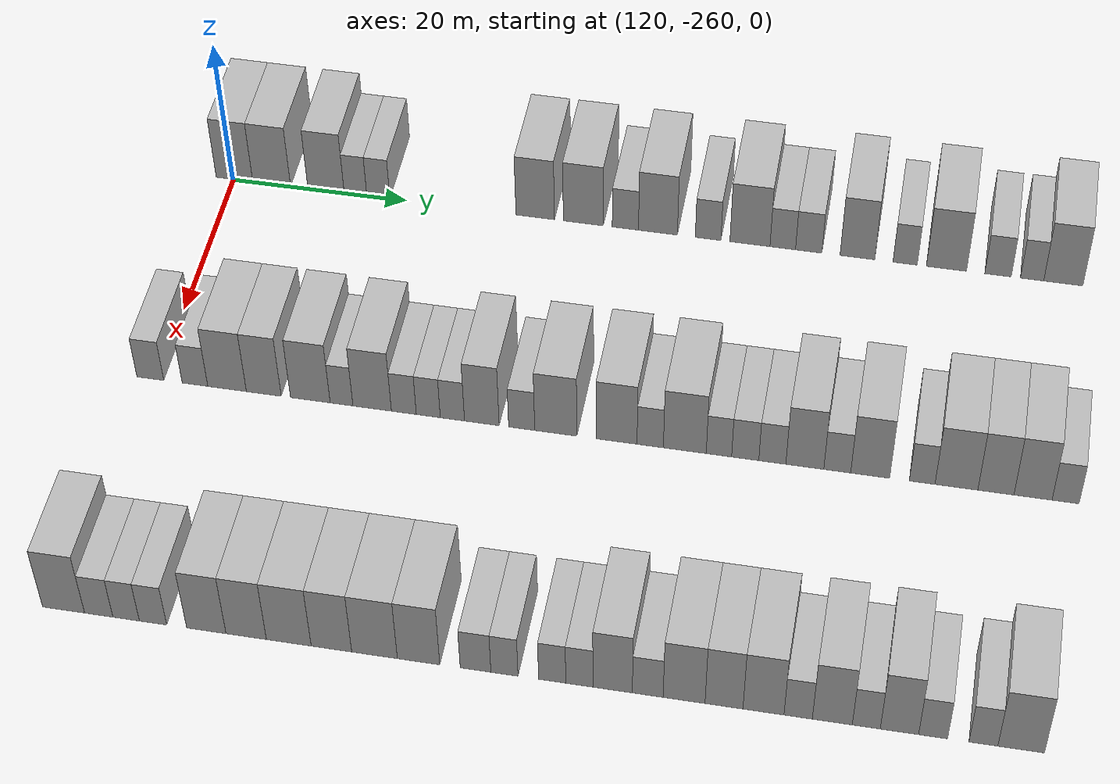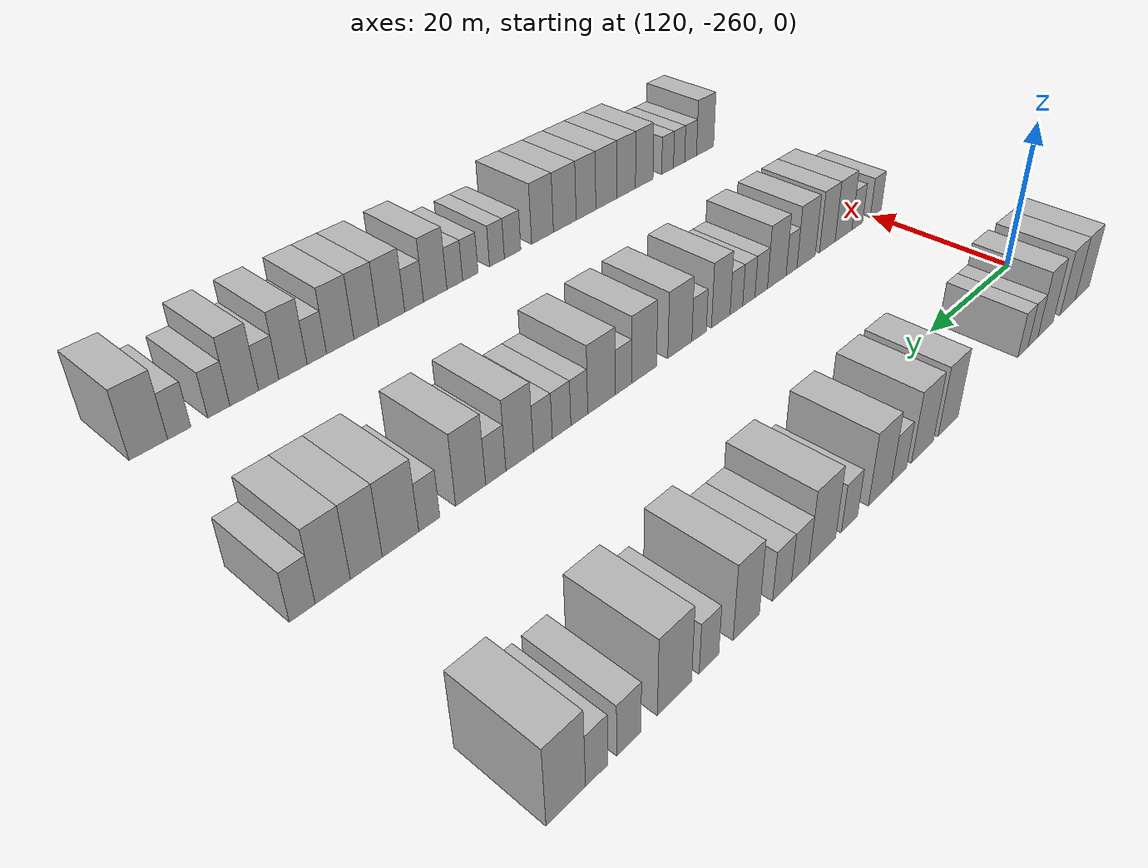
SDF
<sdf version="1.6">
 <world name="default">
  <model name="building_700">
   <static>1</static>
   <pose>115.0000 -259.8580 0 0.000000 0.000000 0.000000</pose>
   <link name="link">
    <pose>0 0 4.50 0 0 0</pose>
    <collision name="collision"><geometry><box><size>10.0000 4.2283 9.0000</size></box></geometry></collision>
    <visual name="visual">
     <cast_shadows>0</cast_shadows>
     <geometry><box><size>10.0000 4.2283 9.0000</size></box></geometry>
     <material>
      <script>
       <uri>model://HANNAS_wall/materials/scripts</uri>
       <uri>model://HANNAS_wall/materials/textures</uri>
       <name>vrc/HANNAS_wall</name>
      </script>
     </material>
    </visual>
   </link>
  </model>
  <model name="building_701">
   <static>1</static>
   <pose>115.0000 -255.5578 0 0.000000 0.000000 0.000000</pose>
   <link name="link">
    <pose>0 0 4.50 0 0 0</pose>
    <collision name="collision"><geometry><box><size>10.0000 4.3722 9.0000</size></box></geometry></collision>
    <visual name="visual">
     <cast_shadows>0</cast_shadows>
     <geometry><box><size>10.0000 4.3722 9.0000</size></box></geometry>
     <material>
      <script>
       <uri>model://HANNAS_wall/materials/scripts</uri>
       <uri>model://HANNAS_wall/materials/textures</uri>
       <name>vrc/HANNAS_wall</name>
      </script>
     </material>
    </visual>
   </link>
  </model>
  <model name="building_702">
   <static>1</static>
   <pose>115.0000 -249.2873 0 0.000000 0.000000 0.000000</pose>
   <link name="link">
    <pose>0 0 4.50 0 0 0</pose>
    <collision name="collision"><geometry><box><size>10.0000 4.1688 9.0000</size></box></geometry></collision>
    <visual name="visual">
     <cast_shadows>0</cast_shadows>
     <geometry><box><size>10.0000 4.1688 9.0000</size></box></geometry>
     <material>
      <script>
       <uri>model://HANNAS_wall/materials/scripts</uri>
       <uri>model://HANNAS_wall/materials/textures</uri>
       <name>vrc/HANNAS_wall</name>
      </script>
     </material>
    </visual>
   </link>
  </model>
  <model name="building_703">
   <static>1</static>
   <pose>115.0000 -245.9062 0 0.000000 0.000000 0.000000</pose>
   <link name="link">
    <pose>0 0 3.00 0 0 0</pose>
    <collision name="collision"><geometry><box><size>10.0000 2.5935 6.0000</size></box></geometry></collision>
    <visual name="visual">
     <cast_shadows>0</cast_shadows>
     <geometry><box><size>10.0000 2.5935 6.0000</size></box></geometry>
     <material>
      <script>
       <uri>model://HANNAS_wall/materials/scripts</uri>
       <uri>model://HANNAS_wall/materials/textures</uri>
       <name>vrc/HANNAS_wall</name>
      </script>
     </material>
    </visual>
   </link>
  </model>
  <model name="building_704">
   <static>1</static>
   <pose>115.0000 -243.2908 0 0.000000 0.000000 0.000000</pose>
   <link name="link">
    <pose>0 0 3.00 0 0 0</pose>
    <collision name="collision"><geometry><box><size>10.0000 2.6372 6.0000</size></box></geometry></collision>
    <visual name="visual">
     <cast_shadows>0</cast_shadows>
     <geometry><box><size>10.0000 2.6372 6.0000</size></box></geometry>
     <material>
      <script>
       <uri>model://HANNAS_wall/materials/scripts</uri>
       <uri>model://HANNAS_wall/materials/textures</uri>
       <name>vrc/HANNAS_wall</name>
      </script>
     </material>
    </visual>
   </link>
  </model>
  <model name="building_705">
   <static>1</static>
   <pose>115.0000 -225.4615 0 0.000000 0.000000 0.000000</pose>
   <link name="link">
    <pose>0 0 4.50 0 0 0</pose>
    <collision name="collision"><geometry><box><size>10.0000 4.3405 9.0000</size></box></geometry></collision>
    <visual name="visual">
     <cast_shadows>0</cast_shadows>
     <geometry><box><size>10.0000 4.3405 9.0000</size></box></geometry>
     <material>
      <script>
       <uri>model://HANNAS_wall/materials/scripts</uri>
       <uri>model://HANNAS_wall/materials/textures</uri>
       <name>vrc/HANNAS_wall</name>
      </script>
     </material>
    </visual>
   </link>
  </model>
  <model name="building_706">
   <static>1</static>
   <pose>115.0000 -220.0468 0 0.000000 0.000000 0.000000</pose>
   <link name="link">
    <pose>0 0 4.50 0 0 0</pose>
    <collision name="collision"><geometry><box><size>10.0000 4.4889 9.0000</size></box></geometry></collision>
    <visual name="visual">
     <cast_shadows>0</cast_shadows>
     <geometry><box><size>10.0000 4.4889 9.0000</size></box></geometry>
     <material>
      <script>
       <uri>model://HANNAS_wall/materials/scripts</uri>
       <uri>model://HANNAS_wall/materials/textures</uri>
       <name>vrc/HANNAS_wall</name>
      </script>
     </material>
    </visual>
   </link>
  </model>
  <model name="building_707">
   <static>1</static>
   <pose>115.0000 -215.3329 0 0.000000 0.000000 0.000000</pose>
   <link name="link">
    <pose>0 0 3.00 0 0 0</pose>
    <collision name="collision"><geometry><box><size>10.0000 2.9389 6.0000</size></box></geometry></collision>
    <visual name="visual">
     <cast_shadows>0</cast_shadows>
     <geometry><box><size>10.0000 2.9389 6.0000</size></box></geometry>
     <material>
      <script>
       <uri>model://HANNAS_wall/materials/scripts</uri>
       <uri>model://HANNAS_wall/materials/textures</uri>
       <name>vrc/HANNAS_wall</name>
      </script>
     </material>
    </visual>
   </link>
  </model>
  <model name="building_708">
   <static>1</static>
   <pose>115.0000 -211.6964 0 0.000000 0.000000 0.000000</pose>
   <link name="link">
    <pose>0 0 4.50 0 0 0</pose>
    <collision name="collision"><geometry><box><size>10.0000 4.3342 9.0000</size></box></geometry></collision>
    <visual name="visual">
     <cast_shadows>0</cast_shadows>
     <geometry><box><size>10.0000 4.3342 9.0000</size></box></geometry>
     <material>
      <script>
       <uri>model://HANNAS_wall/materials/scripts</uri>
       <uri>model://HANNAS_wall/materials/textures</uri>
       <name>vrc/HANNAS_wall</name>
      </script>
     </material>
    </visual>
   </link>
  </model>
  <model name="building_709">
   <static>1</static>
   <pose>115.0000 -206.1065 0 0.000000 0.000000 0.000000</pose>
   <link name="link">
    <pose>0 0 3.00 0 0 0</pose>
    <collision name="collision"><geometry><box><size>10.0000 2.8456 6.0000</size></box></geometry></collision>
    <visual name="visual">
     <cast_shadows>0</cast_shadows>
     <geometry><box><size>10.0000 2.8456 6.0000</size></box></geometry>
     <material>
      <script>
       <uri>model://HANNAS_wall/materials/scripts</uri>
       <uri>model://HANNAS_wall/materials/textures</uri>
       <name>vrc/HANNAS_wall</name>
      </script>
     </material>
    </visual>
   </link>
  </model>
  <model name="building_710">
   <static>1</static>
   <pose>115.0000 -201.4674 0 0.000000 0.000000 0.000000</pose>
   <link name="link">
    <pose>0 0 4.50 0 0 0</pose>
    <collision name="collision"><geometry><box><size>10.0000 4.4326 9.0000</size></box></geometry></collision>
    <visual name="visual">
     <cast_shadows>0</cast_shadows>
     <geometry><box><size>10.0000 4.4326 9.0000</size></box></geometry>
     <material>
      <script>
       <uri>model://HANNAS_wall/materials/scripts</uri>
       <uri>model://HANNAS_wall/materials/textures</uri>
       <name>vrc/HANNAS_wall</name>
      </script>
     </material>
    </visual>
   </link>
  </model>
  <model name="building_711">
   <static>1</static>
   <pose>115.0000 -197.8396 0 0.000000 0.000000 0.000000</pose>
   <link name="link">
    <pose>0 0 3.00 0 0 0</pose>
    <collision name="collision"><geometry><box><size>10.0000 2.8230 6.0000</size></box></geometry></collision>
    <visual name="visual">
     <cast_shadows>0</cast_shadows>
     <geometry><box><size>10.0000 2.8230 6.0000</size></box></geometry>
     <material>
      <script>
       <uri>model://HANNAS_wall/materials/scripts</uri>
       <uri>model://HANNAS_wall/materials/textures</uri>
       <name>vrc/HANNAS_wall</name>
      </script>
     </material>
    </visual>
   </link>
  </model>
  <model name="building_712">
   <static>1</static>
   <pose>115.0000 -194.9778 0 0.000000 0.000000 0.000000</pose>
   <link name="link">
    <pose>0 0 3.00 0 0 0</pose>
    <collision name="collision"><geometry><box><size>10.0000 2.9005 6.0000</size></box></geometry></collision>
    <visual name="visual">
     <cast_shadows>0</cast_shadows>
     <geometry><box><size>10.0000 2.9005 6.0000</size></box></geometry>
     <material>
      <script>
       <uri>model://HANNAS_wall/materials/scripts</uri>
       <uri>model://HANNAS_wall/materials/textures</uri>
       <name>vrc/HANNAS_wall</name>
      </script>
     </material>
    </visual>
   </link>
  </model>
  <model name="building_713">
   <static>1</static>
   <pose>115.0000 -189.6256 0 0.000000 0.000000 0.000000</pose>
   <link name="link">
    <pose>0 0 4.50 0 0 0</pose>
    <collision name="collision"><geometry><box><size>10.0000 3.8039 9.0000</size></box></geometry></collision>
    <visual name="visual">
     <cast_shadows>0</cast_shadows>
     <geometry><box><size>10.0000 3.8039 9.0000</size></box></geometry>
     <material>
      <script>
       <uri>model://HANNAS_wall/materials/scripts</uri>
       <uri>model://HANNAS_wall/materials/textures</uri>
       <name>vrc/HANNAS_wall</name>
      </script>
     </material>
    </visual>
   </link>
  </model>
  <model name="building_714">
   <static>1</static>
   <pose>115.0000 -184.4001 0 0.000000 0.000000 0.000000</pose>
   <link name="link">
    <pose>0 0 3.00 0 0 0</pose>
    <collision name="collision"><geometry><box><size>10.0000 2.6471 6.0000</size></box></geometry></collision>
    <visual name="visual">
     <cast_shadows>0</cast_shadows>
     <geometry><box><size>10.0000 2.6471 6.0000</size></box></geometry>
     <material>
      <script>
       <uri>model://HANNAS_wall/materials/scripts</uri>
       <uri>model://HANNAS_wall/materials/textures</uri>
       <name>vrc/HANNAS_wall</name>
      </script>
     </material>
    </visual>
   </link>
  </model>
  <model name="building_715">
   <static>1</static>
   <pose>115.0000 -179.8982 0 0.000000 0.000000 0.000000</pose>
   <link name="link">
    <pose>0 0 4.50 0 0 0</pose>
    <collision name="collision"><geometry><box><size>10.0000 4.3566 9.0000</size></box></geometry></collision>
    <visual name="visual">
     <cast_shadows>0</cast_shadows>
     <geometry><box><size>10.0000 4.3566 9.0000</size></box></geometry>
     <material>
      <script>
       <uri>model://HANNAS_wall/materials/scripts</uri>
       <uri>model://HANNAS_wall/materials/textures</uri>
       <name>vrc/HANNAS_wall</name>
      </script>
     </material>
    </visual>
   </link>
  </model>
  <model name="building_716">
   <static>1</static>
   <pose>115.0000 -174.2910 0 0.000000 0.000000 0.000000</pose>
   <link name="link">
    <pose>0 0 3.00 0 0 0</pose>
    <collision name="collision"><geometry><box><size>10.0000 2.8578 6.0000</size></box></geometry></collision>
    <visual name="visual">
     <cast_shadows>0</cast_shadows>
     <geometry><box><size>10.0000 2.8578 6.0000</size></box></geometry>
     <material>
      <script>
       <uri>model://HANNAS_wall/materials/scripts</uri>
       <uri>model://HANNAS_wall/materials/textures</uri>
       <name>vrc/HANNAS_wall</name>
      </script>
     </material>
    </visual>
   </link>
  </model>
  <model name="building_717">
   <static>1</static>
   <pose>115.0000 -170.6060 0 0.000000 0.000000 0.000000</pose>
   <link name="link">
    <pose>0 0 3.00 0 0 0</pose>
    <collision name="collision"><geometry><box><size>10.0000 2.5124 6.0000</size></box></geometry></collision>
    <visual name="visual">
     <cast_shadows>0</cast_shadows>
     <geometry><box><size>10.0000 2.5124 6.0000</size></box></geometry>
     <material>
      <script>
       <uri>model://HANNAS_wall/materials/scripts</uri>
       <uri>model://HANNAS_wall/materials/textures</uri>
       <name>vrc/HANNAS_wall</name>
      </script>
     </material>
    </visual>
   </link>
  </model>
  <model name="building_718">
   <static>1</static>
   <pose>115.0000 -167.2430 0 0.000000 0.000000 0.000000</pose>
   <link name="link">
    <pose>0 0 4.50 0 0 0</pose>
    <collision name="collision"><geometry><box><size>10.0000 4.2135 9.0000</size></box></geometry></collision>
    <visual name="visual">
     <cast_shadows>0</cast_shadows>
     <geometry><box><size>10.0000 4.2135 9.0000</size></box></geometry>
     <material>
      <script>
       <uri>model://HANNAS_wall/materials/scripts</uri>
       <uri>model://HANNAS_wall/materials/textures</uri>
       <name>vrc/HANNAS_wall</name>
      </script>
     </material>
    </visual>
   </link>
  </model>
  <model name="building_907">
   <static>1</static>
   <pose>145.0000 -260.8319 0 0.000000 0.000000 0.000000</pose>
   <link name="link">
    <pose>0 0 3.00 0 0 0</pose>
    <collision name="collision"><geometry><box><size>10.0000 2.9143 6.0000</size></box></geometry></collision>
    <visual name="visual">
     <cast_shadows>0</cast_shadows>
     <geometry><box><size>10.0000 2.9143 6.0000</size></box></geometry>
     <material>
      <script>
       <uri>model://HANNAS_wall/materials/scripts</uri>
       <uri>model://HANNAS_wall/materials/textures</uri>
       <name>vrc/HANNAS_wall</name>
      </script>
     </material>
    </visual>
   </link>
  </model>
  <model name="building_908">
   <static>1</static>
   <pose>145.0000 -255.9924 0 0.000000 0.000000 0.000000</pose>
   <link name="link">
    <pose>0 0 3.00 0 0 0</pose>
    <collision name="collision"><geometry><box><size>10.0000 2.7648 6.0000</size></box></geometry></collision>
    <visual name="visual">
     <cast_shadows>0</cast_shadows>
     <geometry><box><size>10.0000 2.7648 6.0000</size></box></geometry>
     <material>
      <script>
       <uri>model://HANNAS_wall/materials/scripts</uri>
       <uri>model://HANNAS_wall/materials/textures</uri>
       <name>vrc/HANNAS_wall</name>
      </script>
     </material>
    </visual>
   </link>
  </model>
  <model name="building_909">
   <static>1</static>
   <pose>145.0000 -252.5292 0 0.000000 0.000000 0.000000</pose>
   <link name="link">
    <pose>0 0 4.50 0 0 0</pose>
    <collision name="collision"><geometry><box><size>10.0000 4.1617 9.0000</size></box></geometry></collision>
    <visual name="visual">
     <cast_shadows>0</cast_shadows>
     <geometry><box><size>10.0000 4.1617 9.0000</size></box></geometry>
     <material>
      <script>
       <uri>model://HANNAS_wall/materials/scripts</uri>
       <uri>model://HANNAS_wall/materials/textures</uri>
       <name>vrc/HANNAS_wall</name>
      </script>
     </material>
    </visual>
   </link>
  </model>
  <model name="building_910">
   <static>1</static>
   <pose>145.0000 -248.5747 0 0.000000 0.000000 0.000000</pose>
   <link name="link">
    <pose>0 0 4.50 0 0 0</pose>
    <collision name="collision"><geometry><box><size>10.0000 3.7472 9.0000</size></box></geometry></collision>
    <visual name="visual">
     <cast_shadows>0</cast_shadows>
     <geometry><box><size>10.0000 3.7472 9.0000</size></box></geometry>
     <material>
      <script>
       <uri>model://HANNAS_wall/materials/scripts</uri>
       <uri>model://HANNAS_wall/materials/textures</uri>
       <name>vrc/HANNAS_wall</name>
      </script>
     </material>
    </visual>
   </link>
  </model>
  <model name="building_911">
   <static>1</static>
   <pose>145.0000 -243.5836 0 0.000000 0.000000 0.000000</pose>
   <link name="link">
    <pose>0 0 4.50 0 0 0</pose>
    <collision name="collision"><geometry><box><size>10.0000 4.2349 9.0000</size></box></geometry></collision>
    <visual name="visual">
     <cast_shadows>0</cast_shadows>
     <geometry><box><size>10.0000 4.2349 9.0000</size></box></geometry>
     <material>
      <script>
       <uri>model://HANNAS_wall/materials/scripts</uri>
       <uri>model://HANNAS_wall/materials/textures</uri>
       <name>vrc/HANNAS_wall</name>
      </script>
     </material>
    </visual>
   </link>
  </model>
  <model name="building_912">
   <static>1</static>
   <pose>145.0000 -240.2496 0 0.000000 0.000000 0.000000</pose>
   <link name="link">
    <pose>0 0 3.00 0 0 0</pose>
    <collision name="collision"><geometry><box><size>10.0000 2.4333 6.0000</size></box></geometry></collision>
    <visual name="visual">
     <cast_shadows>0</cast_shadows>
     <geometry><box><size>10.0000 2.4333 6.0000</size></box></geometry>
     <material>
      <script>
       <uri>model://HANNAS_wall/materials/scripts</uri>
       <uri>model://HANNAS_wall/materials/textures</uri>
       <name>vrc/HANNAS_wall</name>
      </script>
     </material>
    </visual>
   </link>
  </model>
  <model name="building_913">
   <static>1</static>
   <pose>145.0000 -236.9877 0 0.000000 0.000000 0.000000</pose>
   <link name="link">
    <pose>0 0 4.50 0 0 0</pose>
    <collision name="collision"><geometry><box><size>10.0000 4.0904 9.0000</size></box></geometry></collision>
    <visual name="visual">
     <cast_shadows>0</cast_shadows>
     <geometry><box><size>10.0000 4.0904 9.0000</size></box></geometry>
     <material>
      <script>
       <uri>model://HANNAS_wall/materials/scripts</uri>
       <uri>model://HANNAS_wall/materials/textures</uri>
       <name>vrc/HANNAS_wall</name>
      </script>
     </material>
    </visual>
   </link>
  </model>
  <model name="building_914">
   <static>1</static>
   <pose>145.0000 -233.6205 0 0.000000 0.000000 0.000000</pose>
   <link name="link">
    <pose>0 0 3.00 0 0 0</pose>
    <collision name="collision"><geometry><box><size>10.0000 2.6441 6.0000</size></box></geometry></collision>
    <visual name="visual">
     <cast_shadows>0</cast_shadows>
     <geometry><box><size>10.0000 2.6441 6.0000</size></box></geometry>
     <material>
      <script>
       <uri>model://HANNAS_wall/materials/scripts</uri>
       <uri>model://HANNAS_wall/materials/textures</uri>
       <name>vrc/HANNAS_wall</name>
      </script>
     </material>
    </visual>
   </link>
  </model>
  <model name="building_915">
   <static>1</static>
   <pose>145.0000 -231.0294 0 0.000000 0.000000 0.000000</pose>
   <link name="link">
    <pose>0 0 3.00 0 0 0</pose>
    <collision name="collision"><geometry><box><size>10.0000 2.5381 6.0000</size></box></geometry></collision>
    <visual name="visual">
     <cast_shadows>0</cast_shadows>
     <geometry><box><size>10.0000 2.5381 6.0000</size></box></geometry>
     <material>
      <script>
       <uri>model://HANNAS_wall/materials/scripts</uri>
       <uri>model://HANNAS_wall/materials/textures</uri>
       <name>vrc/HANNAS_wall</name>
      </script>
     </material>
    </visual>
   </link>
  </model>
  <model name="building_916">
   <static>1</static>
   <pose>145.0000 -228.4804 0 0.000000 0.000000 0.000000</pose>
   <link name="link">
    <pose>0 0 3.00 0 0 0</pose>
    <collision name="collision"><geometry><box><size>10.0000 2.5599 6.0000</size></box></geometry></collision>
    <visual name="visual">
     <cast_shadows>0</cast_shadows>
     <geometry><box><size>10.0000 2.5599 6.0000</size></box></geometry>
     <material>
      <script>
       <uri>model://HANNAS_wall/materials/scripts</uri>
       <uri>model://HANNAS_wall/materials/textures</uri>
       <name>vrc/HANNAS_wall</name>
      </script>
     </material>
    </visual>
   </link>
  </model>
  <model name="building_917">
   <static>1</static>
   <pose>145.0000 -225.3723 0 0.000000 0.000000 0.000000</pose>
   <link name="link">
    <pose>0 0 4.50 0 0 0</pose>
    <collision name="collision"><geometry><box><size>10.0000 3.6562 9.0000</size></box></geometry></collision>
    <visual name="visual">
     <cast_shadows>0</cast_shadows>
     <geometry><box><size>10.0000 3.6562 9.0000</size></box></geometry>
     <material>
      <script>
       <uri>model://HANNAS_wall/materials/scripts</uri>
       <uri>model://HANNAS_wall/materials/textures</uri>
       <name>vrc/HANNAS_wall</name>
      </script>
     </material>
    </visual>
   </link>
  </model>
  <model name="building_918">
   <static>1</static>
   <pose>145.0000 -221.1748 0 0.000000 0.000000 0.000000</pose>
   <link name="link">
    <pose>0 0 3.00 0 0 0</pose>
    <collision name="collision"><geometry><box><size>10.0000 2.7387 6.0000</size></box></geometry></collision>
    <visual name="visual">
     <cast_shadows>0</cast_shadows>
     <geometry><box><size>10.0000 2.7387 6.0000</size></box></geometry>
     <material>
      <script>
       <uri>model://HANNAS_wall/materials/scripts</uri>
       <uri>model://HANNAS_wall/materials/textures</uri>
       <name>vrc/HANNAS_wall</name>
      </script>
     </material>
    </visual>
   </link>
  </model>
  <model name="building_919">
   <static>1</static>
   <pose>145.0000 -217.6016 0 0.000000 0.000000 0.000000</pose>
   <link name="link">
    <pose>0 0 4.50 0 0 0</pose>
    <collision name="collision"><geometry><box><size>10.0000 4.4077 9.0000</size></box></geometry></collision>
    <visual name="visual">
     <cast_shadows>0</cast_shadows>
     <geometry><box><size>10.0000 4.4077 9.0000</size></box></geometry>
     <material>
      <script>
       <uri>model://HANNAS_wall/materials/scripts</uri>
       <uri>model://HANNAS_wall/materials/textures</uri>
       <name>vrc/HANNAS_wall</name>
      </script>
     </material>
    </visual>
   </link>
  </model>
  <model name="building_920">
   <static>1</static>
   <pose>145.0000 -211.2645 0 0.000000 0.000000 0.000000</pose>
   <link name="link">
    <pose>0 0 4.50 0 0 0</pose>
    <collision name="collision"><geometry><box><size>10.0000 4.2665 9.0000</size></box></geometry></collision>
    <visual name="visual">
     <cast_shadows>0</cast_shadows>
     <geometry><box><size>10.0000 4.2665 9.0000</size></box></geometry>
     <material>
      <script>
       <uri>model://HANNAS_wall/materials/scripts</uri>
       <uri>model://HANNAS_wall/materials/textures</uri>
       <name>vrc/HANNAS_wall</name>
      </script>
     </material>
    </visual>
   </link>
  </model>
  <model name="building_921">
   <static>1</static>
   <pose>145.0000 -207.7626 0 0.000000 0.000000 0.000000</pose>
   <link name="link">
    <pose>0 0 3.00 0 0 0</pose>
    <collision name="collision"><geometry><box><size>10.0000 2.7373 6.0000</size></box></geometry></collision>
    <visual name="visual">
     <cast_shadows>0</cast_shadows>
     <geometry><box><size>10.0000 2.7373 6.0000</size></box></geometry>
     <material>
      <script>
       <uri>model://HANNAS_wall/materials/scripts</uri>
       <uri>model://HANNAS_wall/materials/textures</uri>
       <name>vrc/HANNAS_wall</name>
      </script>
     </material>
    </visual>
   </link>
  </model>
  <model name="building_922">
   <static>1</static>
   <pose>145.0000 -204.1756 0 0.000000 0.000000 0.000000</pose>
   <link name="link">
    <pose>0 0 4.50 0 0 0</pose>
    <collision name="collision"><geometry><box><size>10.0000 4.4366 9.0000</size></box></geometry></collision>
    <visual name="visual">
     <cast_shadows>0</cast_shadows>
     <geometry><box><size>10.0000 4.4366 9.0000</size></box></geometry>
     <material>
      <script>
       <uri>model://HANNAS_wall/materials/scripts</uri>
       <uri>model://HANNAS_wall/materials/textures</uri>
       <name>vrc/HANNAS_wall</name>
      </script>
     </material>
    </visual>
   </link>
  </model>
  <model name="building_923">
   <static>1</static>
   <pose>145.0000 -200.6479 0 0.000000 0.000000 0.000000</pose>
   <link name="link">
    <pose>0 0 3.00 0 0 0</pose>
    <collision name="collision"><geometry><box><size>10.0000 2.6190 6.0000</size></box></geometry></collision>
    <visual name="visual">
     <cast_shadows>0</cast_shadows>
     <geometry><box><size>10.0000 2.6190 6.0000</size></box></geometry>
     <material>
      <script>
       <uri>model://HANNAS_wall/materials/scripts</uri>
       <uri>model://HANNAS_wall/materials/textures</uri>
       <name>vrc/HANNAS_wall</name>
      </script>
     </material>
    </visual>
   </link>
  </model>
  <model name="building_924">
   <static>1</static>
   <pose>145.0000 -197.9389 0 0.000000 0.000000 0.000000</pose>
   <link name="link">
    <pose>0 0 3.00 0 0 0</pose>
    <collision name="collision"><geometry><box><size>10.0000 2.7990 6.0000</size></box></geometry></collision>
    <visual name="visual">
     <cast_shadows>0</cast_shadows>
     <geometry><box><size>10.0000 2.7990 6.0000</size></box></geometry>
     <material>
      <script>
       <uri>model://HANNAS_wall/materials/scripts</uri>
       <uri>model://HANNAS_wall/materials/textures</uri>
       <name>vrc/HANNAS_wall</name>
      </script>
     </material>
    </visual>
   </link>
  </model>
  <model name="building_925">
   <static>1</static>
   <pose>145.0000 -195.1503 0 0.000000 0.000000 0.000000</pose>
   <link name="link">
    <pose>0 0 3.00 0 0 0</pose>
    <collision name="collision"><geometry><box><size>10.0000 2.7781 6.0000</size></box></geometry></collision>
    <visual name="visual">
     <cast_shadows>0</cast_shadows>
     <geometry><box><size>10.0000 2.7781 6.0000</size></box></geometry>
     <material>
      <script>
       <uri>model://HANNAS_wall/materials/scripts</uri>
       <uri>model://HANNAS_wall/materials/textures</uri>
       <name>vrc/HANNAS_wall</name>
      </script>
     </material>
    </visual>
   </link>
  </model>
  <model name="building_926">
   <static>1</static>
   <pose>145.0000 -191.8174 0 0.000000 0.000000 0.000000</pose>
   <link name="link">
    <pose>0 0 4.50 0 0 0</pose>
    <collision name="collision"><geometry><box><size>10.0000 3.8878 9.0000</size></box></geometry></collision>
    <visual name="visual">
     <cast_shadows>0</cast_shadows>
     <geometry><box><size>10.0000 3.8878 9.0000</size></box></geometry>
     <material>
      <script>
       <uri>model://HANNAS_wall/materials/scripts</uri>
       <uri>model://HANNAS_wall/materials/textures</uri>
       <name>vrc/HANNAS_wall</name>
      </script>
     </material>
    </visual>
   </link>
  </model>
  <model name="building_927">
   <static>1</static>
   <pose>145.0000 -188.4990 0 0.000000 0.000000 0.000000</pose>
   <link name="link">
    <pose>0 0 3.00 0 0 0</pose>
    <collision name="collision"><geometry><box><size>10.0000 2.7491 6.0000</size></box></geometry></collision>
    <visual name="visual">
     <cast_shadows>0</cast_shadows>
     <geometry><box><size>10.0000 2.7491 6.0000</size></box></geometry>
     <material>
      <script>
       <uri>model://HANNAS_wall/materials/scripts</uri>
       <uri>model://HANNAS_wall/materials/textures</uri>
       <name>vrc/HANNAS_wall</name>
      </script>
     </material>
    </visual>
   </link>
  </model>
  <model name="building_928">
   <static>1</static>
   <pose>145.0000 -185.1419 0 0.000000 0.000000 0.000000</pose>
   <link name="link">
    <pose>0 0 4.50 0 0 0</pose>
    <collision name="collision"><geometry><box><size>10.0000 3.9650 9.0000</size></box></geometry></collision>
    <visual name="visual">
     <cast_shadows>0</cast_shadows>
     <geometry><box><size>10.0000 3.9650 9.0000</size></box></geometry>
     <material>
      <script>
       <uri>model://HANNAS_wall/materials/scripts</uri>
       <uri>model://HANNAS_wall/materials/textures</uri>
       <name>vrc/HANNAS_wall</name>
      </script>
     </material>
    </visual>
   </link>
  </model>
  <model name="building_929">
   <static>1</static>
   <pose>145.0000 -179.8589 0 0.000000 0.000000 0.000000</pose>
   <link name="link">
    <pose>0 0 3.00 0 0 0</pose>
    <collision name="collision"><geometry><box><size>10.0000 2.6010 6.0000</size></box></geometry></collision>
    <visual name="visual">
     <cast_shadows>0</cast_shadows>
     <geometry><box><size>10.0000 2.6010 6.0000</size></box></geometry>
     <material>
      <script>
       <uri>model://HANNAS_wall/materials/scripts</uri>
       <uri>model://HANNAS_wall/materials/textures</uri>
       <name>vrc/HANNAS_wall</name>
      </script>
     </material>
    </visual>
   </link>
  </model>
  <model name="building_930">
   <static>1</static>
   <pose>145.0000 -176.3910 0 0.000000 0.000000 0.000000</pose>
   <link name="link">
    <pose>0 0 4.50 0 0 0</pose>
    <collision name="collision"><geometry><box><size>10.0000 4.3349 9.0000</size></box></geometry></collision>
    <visual name="visual">
     <cast_shadows>0</cast_shadows>
     <geometry><box><size>10.0000 4.3349 9.0000</size></box></geometry>
     <material>
      <script>
       <uri>model://HANNAS_wall/materials/scripts</uri>
       <uri>model://HANNAS_wall/materials/textures</uri>
       <name>vrc/HANNAS_wall</name>
      </script>
     </material>
    </visual>
   </link>
  </model>
  <model name="building_931">
   <static>1</static>
   <pose>145.0000 -172.4065 0 0.000000 0.000000 0.000000</pose>
   <link name="link">
    <pose>0 0 4.50 0 0 0</pose>
    <collision name="collision"><geometry><box><size>10.0000 3.6339 9.0000</size></box></geometry></collision>
    <visual name="visual">
     <cast_shadows>0</cast_shadows>
     <geometry><box><size>10.0000 3.6339 9.0000</size></box></geometry>
     <material>
      <script>
       <uri>model://HANNAS_wall/materials/scripts</uri>
       <uri>model://HANNAS_wall/materials/textures</uri>
       <name>vrc/HANNAS_wall</name>
      </script>
     </material>
    </visual>
   </link>
  </model>
  <model name="building_932">
   <static>1</static>
   <pose>145.0000 -168.6775 0 0.000000 0.000000 0.000000</pose>
   <link name="link">
    <pose>0 0 4.50 0 0 0</pose>
    <collision name="collision"><geometry><box><size>10.0000 3.8241 9.0000</size></box></geometry></collision>
    <visual name="visual">
     <cast_shadows>0</cast_shadows>
     <geometry><box><size>10.0000 3.8241 9.0000</size></box></geometry>
     <material>
      <script>
       <uri>model://HANNAS_wall/materials/scripts</uri>
       <uri>model://HANNAS_wall/materials/textures</uri>
       <name>vrc/HANNAS_wall</name>
      </script>
     </material>
    </visual>
   </link>
  </model>
  <model name="building_933">
   <static>1</static>
   <pose>145.0000 -165.4105 0 0.000000 0.000000 0.000000</pose>
   <link name="link">
    <pose>0 0 3.00 0 0 0</pose>
    <collision name="collision"><geometry><box><size>10.0000 2.7101 6.0000</size></box></geometry></collision>
    <visual name="visual">
     <cast_shadows>0</cast_shadows>
     <geometry><box><size>10.0000 2.7101 6.0000</size></box></geometry>
     <material>
      <script>
       <uri>model://HANNAS_wall/materials/scripts</uri>
       <uri>model://HANNAS_wall/materials/textures</uri>
       <name>vrc/HANNAS_wall</name>
      </script>
     </material>
    </visual>
   </link>
  </model>
  <model name="building_1130">
   <static>1</static>
   <pose>175.0000 -260.7508 0 0.000000 0.000000 0.000000</pose>
   <link name="link">
    <pose>0 0 4.50 0 0 0</pose>
    <collision name="collision"><geometry><box><size>10.0000 4.2377 9.0000</size></box></geometry></collision>
    <visual name="visual">
     <cast_shadows>0</cast_shadows>
     <geometry><box><size>10.0000 4.2377 9.0000</size></box></geometry>
     <material>
      <script>
       <uri>model://HANNAS_wall/materials/scripts</uri>
       <uri>model://HANNAS_wall/materials/textures</uri>
       <name>vrc/HANNAS_wall</name>
      </script>
     </material>
    </visual>
   </link>
  </model>
  <model name="building_1131">
   <static>1</static>
   <pose>175.0000 -257.1983 0 0.000000 0.000000 0.000000</pose>
   <link name="link">
    <pose>0 0 3.00 0 0 0</pose>
    <collision name="collision"><geometry><box><size>10.0000 2.8672 6.0000</size></box></geometry></collision>
    <visual name="visual">
     <cast_shadows>0</cast_shadows>
     <geometry><box><size>10.0000 2.8672 6.0000</size></box></geometry>
     <material>
      <script>
       <uri>model://HANNAS_wall/materials/scripts</uri>
       <uri>model://HANNAS_wall/materials/textures</uri>
       <name>vrc/HANNAS_wall</name>
      </script>
     </material>
    </visual>
   </link>
  </model>
  <model name="building_1132">
   <static>1</static>
   <pose>175.0000 -254.4382 0 0.000000 0.000000 0.000000</pose>
   <link name="link">
    <pose>0 0 3.00 0 0 0</pose>
    <collision name="collision"><geometry><box><size>10.0000 2.6530 6.0000</size></box></geometry></collision>
    <visual name="visual">
     <cast_shadows>0</cast_shadows>
     <geometry><box><size>10.0000 2.6530 6.0000</size></box></geometry>
     <material>
      <script>
       <uri>model://HANNAS_wall/materials/scripts</uri>
       <uri>model://HANNAS_wall/materials/textures</uri>
       <name>vrc/HANNAS_wall</name>
      </script>
     </material>
    </visual>
   </link>
  </model>
  <model name="building_1133">
   <static>1</static>
   <pose>175.0000 -251.7413 0 0.000000 0.000000 0.000000</pose>
   <link name="link">
    <pose>0 0 3.00 0 0 0</pose>
    <collision name="collision"><geometry><box><size>10.0000 2.7407 6.0000</size></box></geometry></collision>
    <visual name="visual">
     <cast_shadows>0</cast_shadows>
     <geometry><box><size>10.0000 2.7407 6.0000</size></box></geometry>
     <material>
      <script>
       <uri>model://HANNAS_wall/materials/scripts</uri>
       <uri>model://HANNAS_wall/materials/textures</uri>
       <name>vrc/HANNAS_wall</name>
      </script>
     </material>
    </visual>
   </link>
  </model>
  <model name="building_1134">
   <static>1</static>
   <pose>175.0000 -246.4078 0 0.000000 0.000000 0.000000</pose>
   <link name="link">
    <pose>0 0 4.50 0 0 0</pose>
    <collision name="collision"><geometry><box><size>10.0000 3.9263 9.0000</size></box></geometry></collision>
    <visual name="visual">
     <cast_shadows>0</cast_shadows>
     <geometry><box><size>10.0000 3.9263 9.0000</size></box></geometry>
     <material>
      <script>
       <uri>model://HANNAS_wall/materials/scripts</uri>
       <uri>model://HANNAS_wall/materials/textures</uri>
       <name>vrc/HANNAS_wall</name>
      </script>
     </material>
    </visual>
   </link>
  </model>
  <model name="building_1135">
   <static>1</static>
   <pose>175.0000 -242.4346 0 0.000000 0.000000 0.000000</pose>
   <link name="link">
    <pose>0 0 4.50 0 0 0</pose>
    <collision name="collision"><geometry><box><size>10.0000 4.0201 9.0000</size></box></geometry></collision>
    <visual name="visual">
     <cast_shadows>0</cast_shadows>
     <geometry><box><size>10.0000 4.0201 9.0000</size></box></geometry>
     <material>
      <script>
       <uri>model://HANNAS_wall/materials/scripts</uri>
       <uri>model://HANNAS_wall/materials/textures</uri>
       <name>vrc/HANNAS_wall</name>
      </script>
     </material>
    </visual>
   </link>
  </model>
  <model name="building_1136">
   <static>1</static>
   <pose>175.0000 -238.2065 0 0.000000 0.000000 0.000000</pose>
   <link name="link">
    <pose>0 0 4.50 0 0 0</pose>
    <collision name="collision"><geometry><box><size>10.0000 4.4360 9.0000</size></box></geometry></collision>
    <visual name="visual">
     <cast_shadows>0</cast_shadows>
     <geometry><box><size>10.0000 4.4360 9.0000</size></box></geometry>
     <material>
      <script>
       <uri>model://HANNAS_wall/materials/scripts</uri>
       <uri>model://HANNAS_wall/materials/textures</uri>
       <name>vrc/HANNAS_wall</name>
      </script>
     </material>
    </visual>
   </link>
  </model>
  <model name="building_1137">
   <static>1</static>
   <pose>175.0000 -233.9881 0 0.000000 0.000000 0.000000</pose>
   <link name="link">
    <pose>0 0 4.50 0 0 0</pose>
    <collision name="collision"><geometry><box><size>10.0000 4.0008 9.0000</size></box></geometry></collision>
    <visual name="visual">
     <cast_shadows>0</cast_shadows>
     <geometry><box><size>10.0000 4.0008 9.0000</size></box></geometry>
     <material>
      <script>
       <uri>model://HANNAS_wall/materials/scripts</uri>
       <uri>model://HANNAS_wall/materials/textures</uri>
       <name>vrc/HANNAS_wall</name>
      </script>
     </material>
    </visual>
   </link>
  </model>
  <model name="building_1138">
   <static>1</static>
   <pose>175.0000 -229.7412 0 0.000000 0.000000 0.000000</pose>
   <link name="link">
    <pose>0 0 4.50 0 0 0</pose>
    <collision name="collision"><geometry><box><size>10.0000 4.4930 9.0000</size></box></geometry></collision>
    <visual name="visual">
     <cast_shadows>0</cast_shadows>
     <geometry><box><size>10.0000 4.4930 9.0000</size></box></geometry>
     <material>
      <script>
       <uri>model://HANNAS_wall/materials/scripts</uri>
       <uri>model://HANNAS_wall/materials/textures</uri>
       <name>vrc/HANNAS_wall</name>
      </script>
     </material>
    </visual>
   </link>
  </model>
  <model name="building_1139">
   <static>1</static>
   <pose>175.0000 -225.4194 0 0.000000 0.000000 0.000000</pose>
   <link name="link">
    <pose>0 0 4.50 0 0 0</pose>
    <collision name="collision"><geometry><box><size>10.0000 4.1505 9.0000</size></box></geometry></collision>
    <visual name="visual">
     <cast_shadows>0</cast_shadows>
     <geometry><box><size>10.0000 4.1505 9.0000</size></box></geometry>
     <material>
      <script>
       <uri>model://HANNAS_wall/materials/scripts</uri>
       <uri>model://HANNAS_wall/materials/textures</uri>
       <name>vrc/HANNAS_wall</name>
      </script>
     </material>
    </visual>
   </link>
  </model>
  <model name="building_1140">
   <static>1</static>
   <pose>175.0000 -219.8501 0 0.000000 0.000000 0.000000</pose>
   <link name="link">
    <pose>0 0 3.00 0 0 0</pose>
    <collision name="collision"><geometry><box><size>10.0000 2.9881 6.0000</size></box></geometry></collision>
    <visual name="visual">
     <cast_shadows>0</cast_shadows>
     <geometry><box><size>10.0000 2.9881 6.0000</size></box></geometry>
     <material>
      <script>
       <uri>model://HANNAS_wall/materials/scripts</uri>
       <uri>model://HANNAS_wall/materials/textures</uri>
       <name>vrc/HANNAS_wall</name>
      </script>
     </material>
    </visual>
   </link>
  </model>
  <model name="building_1141">
   <static>1</static>
   <pose>175.0000 -217.0378 0 0.000000 0.000000 0.000000</pose>
   <link name="link">
    <pose>0 0 3.00 0 0 0</pose>
    <collision name="collision"><geometry><box><size>10.0000 2.6366 6.0000</size></box></geometry></collision>
    <visual name="visual">
     <cast_shadows>0</cast_shadows>
     <geometry><box><size>10.0000 2.6366 6.0000</size></box></geometry>
     <material>
      <script>
       <uri>model://HANNAS_wall/materials/scripts</uri>
       <uri>model://HANNAS_wall/materials/textures</uri>
       <name>vrc/HANNAS_wall</name>
      </script>
     </material>
    </visual>
   </link>
  </model>
  <model name="building_1142">
   <static>1</static>
   <pose>175.0000 -212.4058 0 0.000000 0.000000 0.000000</pose>
   <link name="link">
    <pose>0 0 3.00 0 0 0</pose>
    <collision name="collision"><geometry><box><size>10.0000 2.6273 6.0000</size></box></geometry></collision>
    <visual name="visual">
     <cast_shadows>0</cast_shadows>
     <geometry><box><size>10.0000 2.6273 6.0000</size></box></geometry>
     <material>
      <script>
       <uri>model://HANNAS_wall/materials/scripts</uri>
       <uri>model://HANNAS_wall/materials/textures</uri>
       <name>vrc/HANNAS_wall</name>
      </script>
     </material>
    </visual>
   </link>
  </model>
  <model name="building_1143">
   <static>1</static>
   <pose>175.0000 -209.7840 0 0.000000 0.000000 0.000000</pose>
   <link name="link">
    <pose>0 0 3.00 0 0 0</pose>
    <collision name="collision"><geometry><box><size>10.0000 2.6165 6.0000</size></box></geometry></collision>
    <visual name="visual">
     <cast_shadows>0</cast_shadows>
     <geometry><box><size>10.0000 2.6165 6.0000</size></box></geometry>
     <material>
      <script>
       <uri>model://HANNAS_wall/materials/scripts</uri>
       <uri>model://HANNAS_wall/materials/textures</uri>
       <name>vrc/HANNAS_wall</name>
      </script>
     </material>
    </visual>
   </link>
  </model>
  <model name="building_1144">
   <static>1</static>
   <pose>175.0000 -206.5780 0 0.000000 0.000000 0.000000</pose>
   <link name="link">
    <pose>0 0 4.50 0 0 0</pose>
    <collision name="collision"><geometry><box><size>10.0000 3.7953 9.0000</size></box></geometry></collision>
    <visual name="visual">
     <cast_shadows>0</cast_shadows>
     <geometry><box><size>10.0000 3.7953 9.0000</size></box></geometry>
     <material>
      <script>
       <uri>model://HANNAS_wall/materials/scripts</uri>
       <uri>model://HANNAS_wall/materials/textures</uri>
       <name>vrc/HANNAS_wall</name>
      </script>
     </material>
    </visual>
   </link>
  </model>
  <model name="building_1145">
   <static>1</static>
   <pose>175.0000 -203.2027 0 0.000000 0.000000 0.000000</pose>
   <link name="link">
    <pose>0 0 3.00 0 0 0</pose>
    <collision name="collision"><geometry><box><size>10.0000 2.9555 6.0000</size></box></geometry></collision>
    <visual name="visual">
     <cast_shadows>0</cast_shadows>
     <geometry><box><size>10.0000 2.9555 6.0000</size></box></geometry>
     <material>
      <script>
       <uri>model://HANNAS_wall/materials/scripts</uri>
       <uri>model://HANNAS_wall/materials/textures</uri>
       <name>vrc/HANNAS_wall</name>
      </script>
     </material>
    </visual>
   </link>
  </model>
  <model name="building_1146">
   <static>1</static>
   <pose>175.0000 -199.7197 0 0.000000 0.000000 0.000000</pose>
   <link name="link">
    <pose>0 0 4.50 0 0 0</pose>
    <collision name="collision"><geometry><box><size>10.0000 4.0104 9.0000</size></box></geometry></collision>
    <visual name="visual">
     <cast_shadows>0</cast_shadows>
     <geometry><box><size>10.0000 4.0104 9.0000</size></box></geometry>
     <material>
      <script>
       <uri>model://HANNAS_wall/materials/scripts</uri>
       <uri>model://HANNAS_wall/materials/textures</uri>
       <name>vrc/HANNAS_wall</name>
      </script>
     </material>
    </visual>
   </link>
  </model>
  <model name="building_1147">
   <static>1</static>
   <pose>175.0000 -195.9077 0 0.000000 0.000000 0.000000</pose>
   <link name="link">
    <pose>0 0 4.50 0 0 0</pose>
    <collision name="collision"><geometry><box><size>10.0000 3.6137 9.0000</size></box></geometry></collision>
    <visual name="visual">
     <cast_shadows>0</cast_shadows>
     <geometry><box><size>10.0000 3.6137 9.0000</size></box></geometry>
     <material>
      <script>
       <uri>model://HANNAS_wall/materials/scripts</uri>
       <uri>model://HANNAS_wall/materials/textures</uri>
       <name>vrc/HANNAS_wall</name>
      </script>
     </material>
    </visual>
   </link>
  </model>
  <model name="building_1148">
   <static>1</static>
   <pose>175.0000 -192.1523 0 0.000000 0.000000 0.000000</pose>
   <link name="link">
    <pose>0 0 4.50 0 0 0</pose>
    <collision name="collision"><geometry><box><size>10.0000 3.8972 9.0000</size></box></geometry></collision>
    <visual name="visual">
     <cast_shadows>0</cast_shadows>
     <geometry><box><size>10.0000 3.8972 9.0000</size></box></geometry>
     <material>
      <script>
       <uri>model://HANNAS_wall/materials/scripts</uri>
       <uri>model://HANNAS_wall/materials/textures</uri>
       <name>vrc/HANNAS_wall</name>
      </script>
     </material>
    </visual>
   </link>
  </model>
  <model name="building_1149">
   <static>1</static>
   <pose>175.0000 -188.8602 0 0.000000 0.000000 0.000000</pose>
   <link name="link">
    <pose>0 0 3.00 0 0 0</pose>
    <collision name="collision"><geometry><box><size>10.0000 2.6870 6.0000</size></box></geometry></collision>
    <visual name="visual">
     <cast_shadows>0</cast_shadows>
     <geometry><box><size>10.0000 2.6870 6.0000</size></box></geometry>
     <material>
      <script>
       <uri>model://HANNAS_wall/materials/scripts</uri>
       <uri>model://HANNAS_wall/materials/textures</uri>
       <name>vrc/HANNAS_wall</name>
      </script>
     </material>
    </visual>
   </link>
  </model>
  <model name="building_1150">
   <static>1</static>
   <pose>175.0000 -185.6293 0 0.000000 0.000000 0.000000</pose>
   <link name="link">
    <pose>0 0 4.50 0 0 0</pose>
    <collision name="collision"><geometry><box><size>10.0000 3.7746 9.0000</size></box></geometry></collision>
    <visual name="visual">
     <cast_shadows>0</cast_shadows>
     <geometry><box><size>10.0000 3.7746 9.0000</size></box></geometry>
     <material>
      <script>
       <uri>model://HANNAS_wall/materials/scripts</uri>
       <uri>model://HANNAS_wall/materials/textures</uri>
       <name>vrc/HANNAS_wall</name>
      </script>
     </material>
    </visual>
   </link>
  </model>
  <model name="building_1151">
   <static>1</static>
   <pose>175.0000 -182.4260 0 0.000000 0.000000 0.000000</pose>
   <link name="link">
    <pose>0 0 3.00 0 0 0</pose>
    <collision name="collision"><geometry><box><size>10.0000 2.6321 6.0000</size></box></geometry></collision>
    <visual name="visual">
     <cast_shadows>0</cast_shadows>
     <geometry><box><size>10.0000 2.6321 6.0000</size></box></geometry>
     <material>
      <script>
       <uri>model://HANNAS_wall/materials/scripts</uri>
       <uri>model://HANNAS_wall/materials/textures</uri>
       <name>vrc/HANNAS_wall</name>
      </script>
     </material>
    </visual>
   </link>
  </model>
  <model name="building_1152">
   <static>1</static>
   <pose>175.0000 -179.3096 0 0.000000 0.000000 0.000000</pose>
   <link name="link">
    <pose>0 0 4.50 0 0 0</pose>
    <collision name="collision"><geometry><box><size>10.0000 3.6007 9.0000</size></box></geometry></collision>
    <visual name="visual">
     <cast_shadows>0</cast_shadows>
     <geometry><box><size>10.0000 3.6007 9.0000</size></box></geometry>
     <material>
      <script>
       <uri>model://HANNAS_wall/materials/scripts</uri>
       <uri>model://HANNAS_wall/materials/textures</uri>
       <name>vrc/HANNAS_wall</name>
      </script>
     </material>
    </visual>
   </link>
  </model>
  <model name="building_1153">
   <static>1</static>
   <pose>175.0000 -176.1529 0 0.000000 0.000000 0.000000</pose>
   <link name="link">
    <pose>0 0 3.00 0 0 0</pose>
    <collision name="collision"><geometry><box><size>10.0000 2.7126 6.0000</size></box></geometry></collision>
    <visual name="visual">
     <cast_shadows>0</cast_shadows>
     <geometry><box><size>10.0000 2.7126 6.0000</size></box></geometry>
     <material>
      <script>
       <uri>model://HANNAS_wall/materials/scripts</uri>
       <uri>model://HANNAS_wall/materials/textures</uri>
       <name>vrc/HANNAS_wall</name>
      </script>
     </material>
    </visual>
   </link>
  </model>
  <model name="building_1154">
   <static>1</static>
   <pose>175.0000 -171.4510 0 0.000000 0.000000 0.000000</pose>
   <link name="link">
    <pose>0 0 3.00 0 0 0</pose>
    <collision name="collision"><geometry><box><size>10.0000 2.6913 6.0000</size></box></geometry></collision>
    <visual name="visual">
     <cast_shadows>0</cast_shadows>
     <geometry><box><size>10.0000 2.6913 6.0000</size></box></geometry>
     <material>
      <script>
       <uri>model://HANNAS_wall/materials/scripts</uri>
       <uri>model://HANNAS_wall/materials/textures</uri>
       <name>vrc/HANNAS_wall</name>
      </script>
     </material>
    </visual>
   </link>
  </model>
  <model name="building_1155">
   <static>1</static>
   <pose>175.0000 -167.9404 0 0.000000 0.000000 0.000000</pose>
   <link name="link">
    <pose>0 0 4.50 0 0 0</pose>
    <collision name="collision"><geometry><box><size>10.0000 4.3300 9.0000</size></box></geometry></collision>
    <visual name="visual">
     <cast_shadows>0</cast_shadows>
     <geometry><box><size>10.0000 4.3300 9.0000</size></box></geometry>
     <material>
      <script>
       <uri>model://HANNAS_wall/materials/scripts</uri>
       <uri>model://HANNAS_wall/materials/textures</uri>
       <name>vrc/HANNAS_wall</name>
      </script>
     </material>
    </visual>
   </link>
  </model>
 </world>
</sdf>
